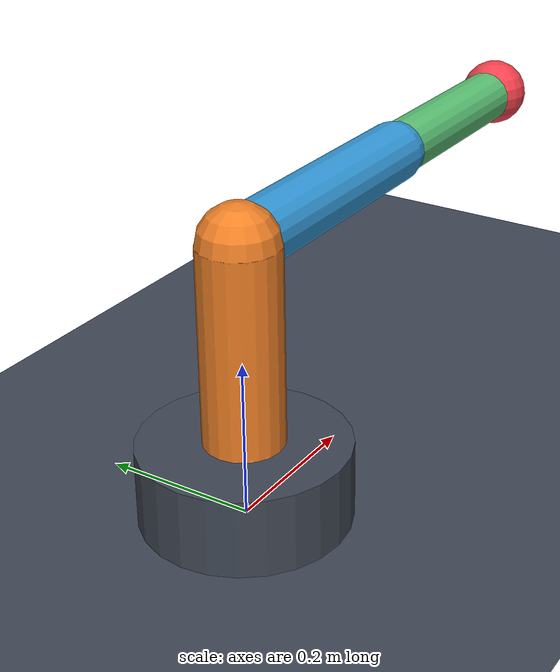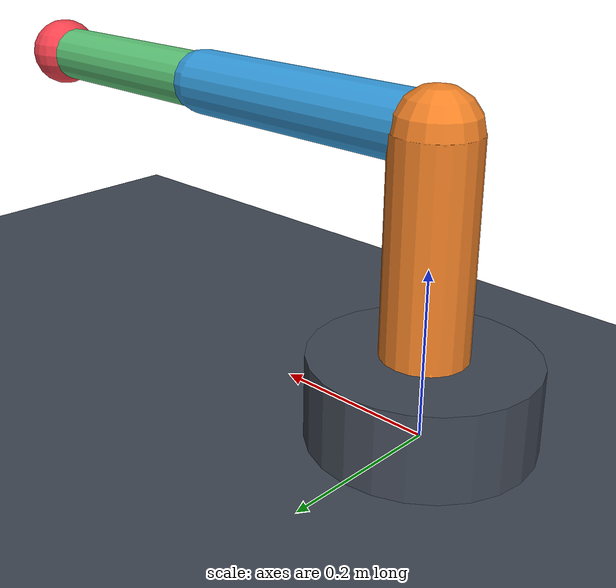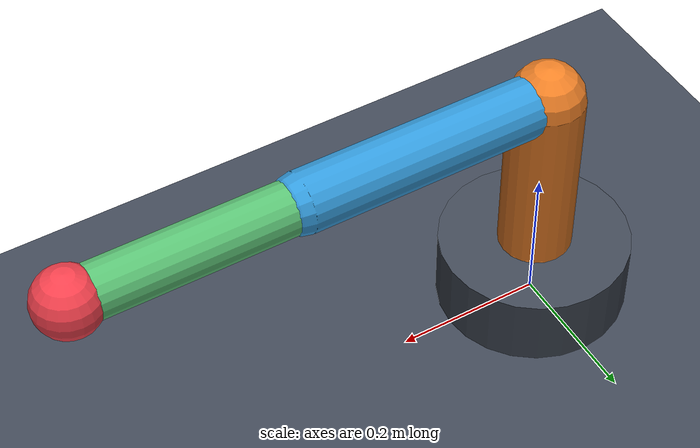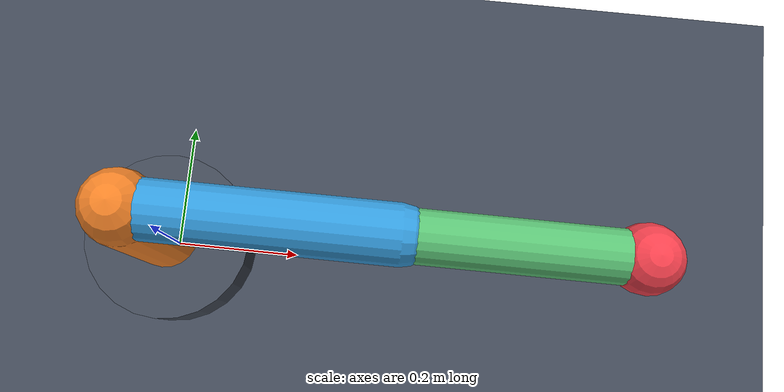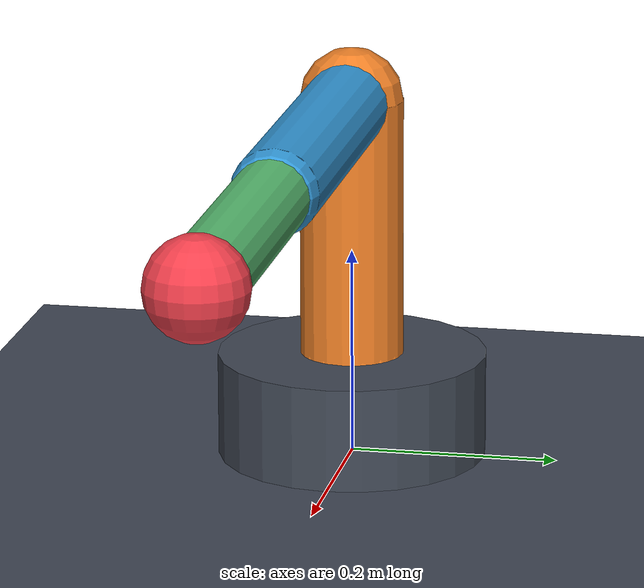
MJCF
<mujoco model="arm3">
  <!-- 3 自由度机械臂：底座旋转 / 肩 / 肘。所有角度单位为弧度。 -->
  <compiler angle="radian" autolimits="true"/>
  <option timestep="0.002" gravity="0 0 -9.81" integrator="implicitfast"/>

  <visual>
    <global offwidth="1280" offheight="800"/>
    <headlight ambient="0.45 0.45 0.45" diffuse="0.55 0.55 0.55" specular="0.1 0.1 0.1"/>
    <quality shadowsize="2048"/>
    <map znear="0.01"/>
  </visual>

  <asset>
    <texture type="skybox" builtin="gradient" rgb1="0.62 0.76 0.92" rgb2="0.08 0.12 0.2" width="512" height="512"/>
    <texture name="grid" type="2d" builtin="checker" rgb1="0.22 0.25 0.3" rgb2="0.28 0.31 0.37" width="300" height="300"/>
    <material name="grid" texture="grid" texrepeat="8 8" reflectance="0.12"/>
    <material name="base" rgba="0.25 0.28 0.33 1"/>
    <material name="link_a" rgba="0.93 0.5 0.15 1"/>
    <material name="link_b" rgba="0.2 0.6 0.85 1"/>
    <material name="link_c" rgba="0.35 0.75 0.45 1"/>
    <material name="tip" rgba="0.95 0.25 0.3 1"/>
  </asset>

  <default>
    <joint damping="0.4" armature="0.01"/>
    <geom density="300" contype="1" conaffinity="1"/>
    <position kp="60" kv="6"/>
  </default>

  <worldbody>
    <light pos="1 -1 3" dir="-0.3 0.3 -1" directional="true" castshadow="true"/>
    <geom name="floor" type="plane" size="3 3 0.1" material="grid"/>
    <camera name="front" pos="1.6 -1.6 1.1" xyaxes="0.707 0.707 0 -0.27 0.27 0.92"/>

    <body name="base" pos="0 0 0">
      <geom name="base_geom" type="cylinder" size="0.13 0.05" pos="0 0 0.05" material="base"/>
      <body name="link1" pos="0 0 0.1">
        <joint name="base_yaw" type="hinge" axis="0 0 1" range="-3.0 3.0"/>
        <geom name="link1_geom" type="capsule" fromto="0 0 0 0 0 0.25" size="0.05" material="link_a"/>
        <body name="link2" pos="0 0 0.25">
          <joint name="shoulder" type="hinge" axis="0 1 0" range="-2.0 2.0"/>
          <geom name="link2_geom" type="capsule" fromto="0 0 0 0.35 0 0" size="0.04" material="link_b"/>
          <body name="link3" pos="0.35 0 0">
            <joint name="elbow" type="hinge" axis="0 1 0" range="-2.3 2.3"/>
            <geom name="link3_geom" type="capsule" fromto="0 0 0 0.3 0 0" size="0.035" material="link_c"/>
            <body name="tip" pos="0.3 0 0">
              <geom name="tip_geom" type="sphere" size="0.045" material="tip"/>
              <site name="tip_site" pos="0 0 0" size="0.01"/>
            </body>
          </body>
        </body>
      </body>
    </body>
  </worldbody>

  <contact>
    <!-- 底座是固定在世界上的，MuJoCo 不会自动排除它与第一节连杆的碰撞，这里手动排除 -->
    <exclude body1="base" body2="link1"/>
  </contact>

  <actuator>
    <position name="act_base_yaw" joint="base_yaw" ctrlrange="-3.0 3.0" forcerange="-60 60"/>
    <position name="act_shoulder" joint="shoulder" ctrlrange="-2.0 2.0" forcerange="-60 60"/>
    <position name="act_elbow" joint="elbow" ctrlrange="-2.3 2.3" forcerange="-60 60"/>
  </actuator>
</mujoco>
